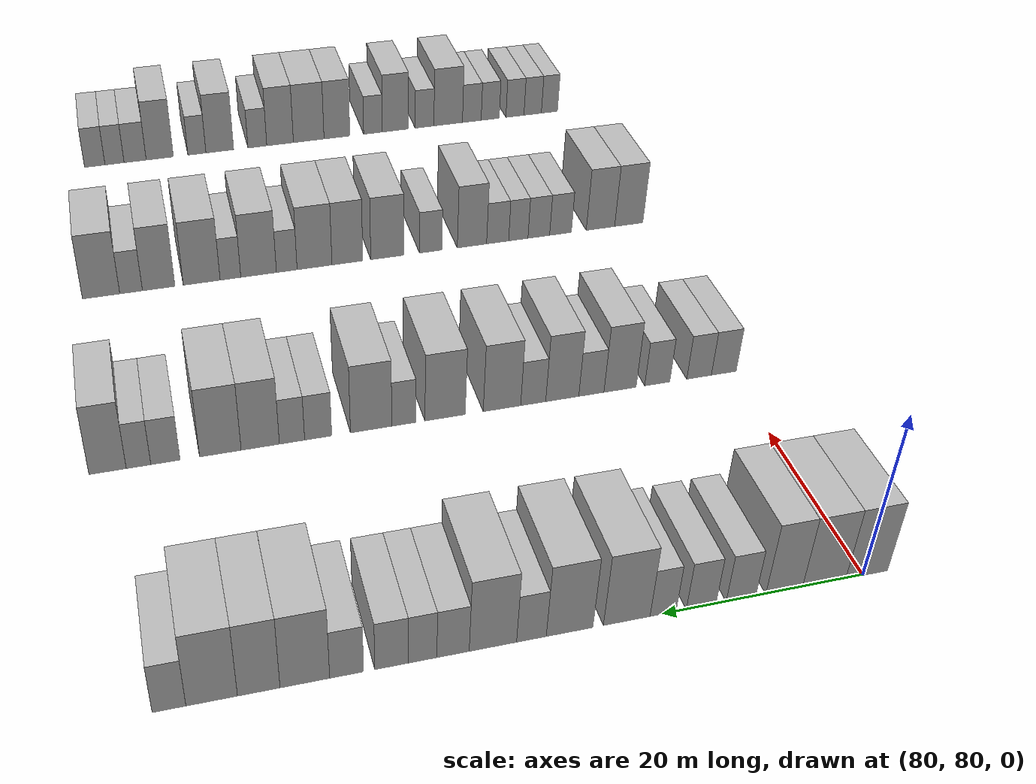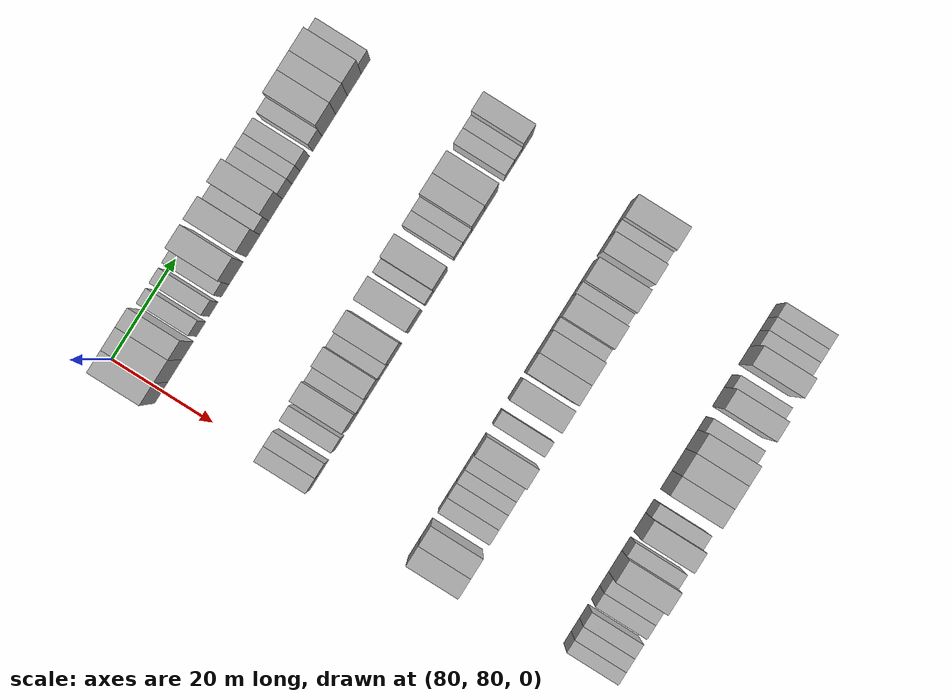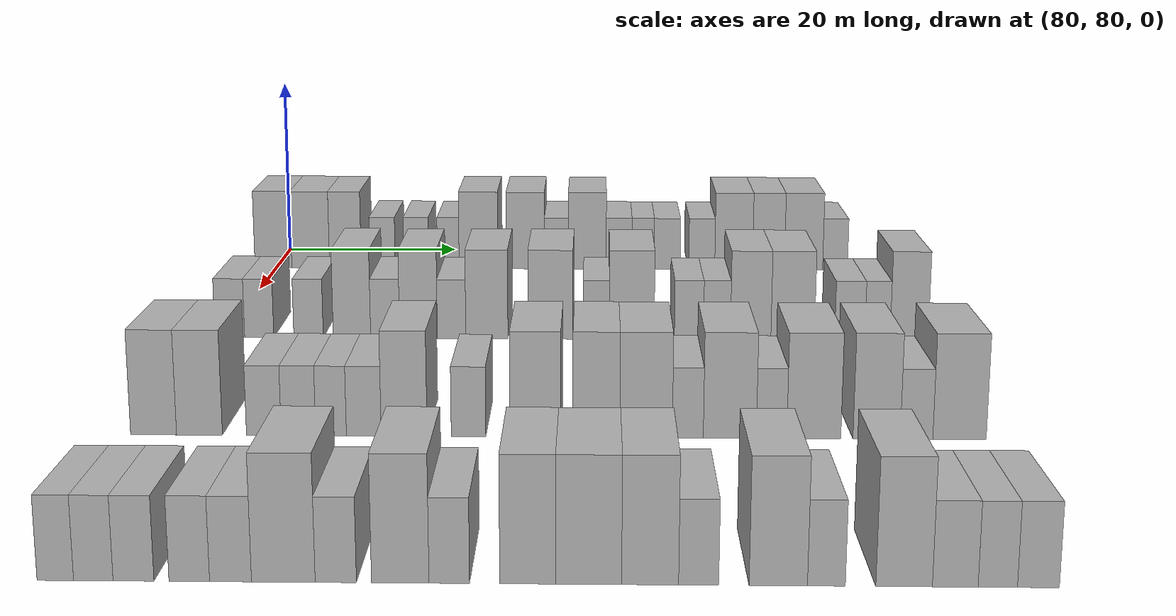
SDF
<sdf version="1.6">
 <world name="default">
  <model name="building_597">
   <static>1</static>
   <pose>85.0000 79.6648 0 0.000000 0.000000 0.000000</pose>
   <link name="link">
    <pose>0 0 4.50 0 0 0</pose>
    <collision name="collision"><geometry><box><size>10.0000 4.2686 9.0000</size></box></geometry></collision>
    <visual name="visual">
     <cast_shadows>0</cast_shadows>
     <geometry><box><size>10.0000 4.2686 9.0000</size></box></geometry>
     <material>
      <script>
       <uri>model://HANNAS_wall/materials/scripts</uri>
       <uri>model://HANNAS_wall/materials/textures</uri>
       <name>vrc/HANNAS_wall</name>
      </script>
     </material>
    </visual>
   </link>
  </model>
  <model name="building_598">
   <static>1</static>
   <pose>85.0000 83.9925 0 0.000000 0.000000 0.000000</pose>
   <link name="link">
    <pose>0 0 4.50 0 0 0</pose>
    <collision name="collision"><geometry><box><size>10.0000 4.3868 9.0000</size></box></geometry></collision>
    <visual name="visual">
     <cast_shadows>0</cast_shadows>
     <geometry><box><size>10.0000 4.3868 9.0000</size></box></geometry>
     <material>
      <script>
       <uri>model://HANNAS_wall/materials/scripts</uri>
       <uri>model://HANNAS_wall/materials/textures</uri>
       <name>vrc/HANNAS_wall</name>
      </script>
     </material>
    </visual>
   </link>
  </model>
  <model name="building_599">
   <static>1</static>
   <pose>85.0000 88.0262 0 0.000000 0.000000 0.000000</pose>
   <link name="link">
    <pose>0 0 4.50 0 0 0</pose>
    <collision name="collision"><geometry><box><size>10.0000 3.6805 9.0000</size></box></geometry></collision>
    <visual name="visual">
     <cast_shadows>0</cast_shadows>
     <geometry><box><size>10.0000 3.6805 9.0000</size></box></geometry>
     <material>
      <script>
       <uri>model://HANNAS_wall/materials/scripts</uri>
       <uri>model://HANNAS_wall/materials/textures</uri>
       <name>vrc/HANNAS_wall</name>
      </script>
     </material>
    </visual>
   </link>
  </model>
  <model name="building_600">
   <static>1</static>
   <pose>85.0000 92.3312 0 0.000000 0.000000 0.000000</pose>
   <link name="link">
    <pose>0 0 3.00 0 0 0</pose>
    <collision name="collision"><geometry><box><size>10.0000 2.9296 6.0000</size></box></geometry></collision>
    <visual name="visual">
     <cast_shadows>0</cast_shadows>
     <geometry><box><size>10.0000 2.9296 6.0000</size></box></geometry>
     <material>
      <script>
       <uri>model://HANNAS_wall/materials/scripts</uri>
       <uri>model://HANNAS_wall/materials/textures</uri>
       <name>vrc/HANNAS_wall</name>
      </script>
     </material>
    </visual>
   </link>
  </model>
  <model name="building_601">
   <static>1</static>
   <pose>85.0000 96.2446 0 0.000000 0.000000 0.000000</pose>
   <link name="link">
    <pose>0 0 3.00 0 0 0</pose>
    <collision name="collision"><geometry><box><size>10.0000 2.8971 6.0000</size></box></geometry></collision>
    <visual name="visual">
     <cast_shadows>0</cast_shadows>
     <geometry><box><size>10.0000 2.8971 6.0000</size></box></geometry>
     <material>
      <script>
       <uri>model://HANNAS_wall/materials/scripts</uri>
       <uri>model://HANNAS_wall/materials/textures</uri>
       <name>vrc/HANNAS_wall</name>
      </script>
     </material>
    </visual>
   </link>
  </model>
  <model name="building_602">
   <static>1</static>
   <pose>85.0000 99.9467 0 0.000000 0.000000 0.000000</pose>
   <link name="link">
    <pose>0 0 3.00 0 0 0</pose>
    <collision name="collision"><geometry><box><size>10.0000 2.5072 6.0000</size></box></geometry></collision>
    <visual name="visual">
     <cast_shadows>0</cast_shadows>
     <geometry><box><size>10.0000 2.5072 6.0000</size></box></geometry>
     <material>
      <script>
       <uri>model://HANNAS_wall/materials/scripts</uri>
       <uri>model://HANNAS_wall/materials/textures</uri>
       <name>vrc/HANNAS_wall</name>
      </script>
     </material>
    </visual>
   </link>
  </model>
  <model name="building_603">
   <static>1</static>
   <pose>85.0000 103.4349 0 0.000000 0.000000 0.000000</pose>
   <link name="link">
    <pose>0 0 4.50 0 0 0</pose>
    <collision name="collision"><geometry><box><size>10.0000 4.4692 9.0000</size></box></geometry></collision>
    <visual name="visual">
     <cast_shadows>0</cast_shadows>
     <geometry><box><size>10.0000 4.4692 9.0000</size></box></geometry>
     <material>
      <script>
       <uri>model://HANNAS_wall/materials/scripts</uri>
       <uri>model://HANNAS_wall/materials/textures</uri>
       <name>vrc/HANNAS_wall</name>
      </script>
     </material>
    </visual>
   </link>
  </model>
  <model name="building_604">
   <static>1</static>
   <pose>85.0000 108.8616 0 0.000000 0.000000 0.000000</pose>
   <link name="link">
    <pose>0 0 4.50 0 0 0</pose>
    <collision name="collision"><geometry><box><size>10.0000 4.3843 9.0000</size></box></geometry></collision>
    <visual name="visual">
     <cast_shadows>0</cast_shadows>
     <geometry><box><size>10.0000 4.3843 9.0000</size></box></geometry>
     <material>
      <script>
       <uri>model://HANNAS_wall/materials/scripts</uri>
       <uri>model://HANNAS_wall/materials/textures</uri>
       <name>vrc/HANNAS_wall</name>
      </script>
     </material>
    </visual>
   </link>
  </model>
  <model name="building_605">
   <static>1</static>
   <pose>85.0000 112.4361 0 0.000000 0.000000 0.000000</pose>
   <link name="link">
    <pose>0 0 3.00 0 0 0</pose>
    <collision name="collision"><geometry><box><size>10.0000 2.7646 6.0000</size></box></geometry></collision>
    <visual name="visual">
     <cast_shadows>0</cast_shadows>
     <geometry><box><size>10.0000 2.7646 6.0000</size></box></geometry>
     <material>
      <script>
       <uri>model://HANNAS_wall/materials/scripts</uri>
       <uri>model://HANNAS_wall/materials/textures</uri>
       <name>vrc/HANNAS_wall</name>
      </script>
     </material>
    </visual>
   </link>
  </model>
  <model name="building_606">
   <static>1</static>
   <pose>85.0000 116.0012 0 0.000000 0.000000 0.000000</pose>
   <link name="link">
    <pose>0 0 4.50 0 0 0</pose>
    <collision name="collision"><geometry><box><size>10.0000 4.3656 9.0000</size></box></geometry></collision>
    <visual name="visual">
     <cast_shadows>0</cast_shadows>
     <geometry><box><size>10.0000 4.3656 9.0000</size></box></geometry>
     <material>
      <script>
       <uri>model://HANNAS_wall/materials/scripts</uri>
       <uri>model://HANNAS_wall/materials/textures</uri>
       <name>vrc/HANNAS_wall</name>
      </script>
     </material>
    </visual>
   </link>
  </model>
  <model name="building_607">
   <static>1</static>
   <pose>85.0000 119.6629 0 0.000000 0.000000 0.000000</pose>
   <link name="link">
    <pose>0 0 3.00 0 0 0</pose>
    <collision name="collision"><geometry><box><size>10.0000 2.9578 6.0000</size></box></geometry></collision>
    <visual name="visual">
     <cast_shadows>0</cast_shadows>
     <geometry><box><size>10.0000 2.9578 6.0000</size></box></geometry>
     <material>
      <script>
       <uri>model://HANNAS_wall/materials/scripts</uri>
       <uri>model://HANNAS_wall/materials/textures</uri>
       <name>vrc/HANNAS_wall</name>
      </script>
     </material>
    </visual>
   </link>
  </model>
  <model name="building_608">
   <static>1</static>
   <pose>85.0000 122.4268 0 0.000000 0.000000 0.000000</pose>
   <link name="link">
    <pose>0 0 3.00 0 0 0</pose>
    <collision name="collision"><geometry><box><size>10.0000 2.5700 6.0000</size></box></geometry></collision>
    <visual name="visual">
     <cast_shadows>0</cast_shadows>
     <geometry><box><size>10.0000 2.5700 6.0000</size></box></geometry>
     <material>
      <script>
       <uri>model://HANNAS_wall/materials/scripts</uri>
       <uri>model://HANNAS_wall/materials/textures</uri>
       <name>vrc/HANNAS_wall</name>
      </script>
     </material>
    </visual>
   </link>
  </model>
  <model name="building_609">
   <static>1</static>
   <pose>85.0000 125.2108 0 0.000000 0.000000 0.000000</pose>
   <link name="link">
    <pose>0 0 3.00 0 0 0</pose>
    <collision name="collision"><geometry><box><size>10.0000 2.9979 6.0000</size></box></geometry></collision>
    <visual name="visual">
     <cast_shadows>0</cast_shadows>
     <geometry><box><size>10.0000 2.9979 6.0000</size></box></geometry>
     <material>
      <script>
       <uri>model://HANNAS_wall/materials/scripts</uri>
       <uri>model://HANNAS_wall/materials/textures</uri>
       <name>vrc/HANNAS_wall</name>
      </script>
     </material>
    </visual>
   </link>
  </model>
  <model name="building_610">
   <static>1</static>
   <pose>85.0000 129.2045 0 0.000000 0.000000 0.000000</pose>
   <link name="link">
    <pose>0 0 3.00 0 0 0</pose>
    <collision name="collision"><geometry><box><size>10.0000 2.9896 6.0000</size></box></geometry></collision>
    <visual name="visual">
     <cast_shadows>0</cast_shadows>
     <geometry><box><size>10.0000 2.9896 6.0000</size></box></geometry>
     <material>
      <script>
       <uri>model://HANNAS_wall/materials/scripts</uri>
       <uri>model://HANNAS_wall/materials/textures</uri>
       <name>vrc/HANNAS_wall</name>
      </script>
     </material>
    </visual>
   </link>
  </model>
  <model name="building_611">
   <static>1</static>
   <pose>85.0000 132.8701 0 0.000000 0.000000 0.000000</pose>
   <link name="link">
    <pose>0 0 4.50 0 0 0</pose>
    <collision name="collision"><geometry><box><size>10.0000 4.3416 9.0000</size></box></geometry></collision>
    <visual name="visual">
     <cast_shadows>0</cast_shadows>
     <geometry><box><size>10.0000 4.3416 9.0000</size></box></geometry>
     <material>
      <script>
       <uri>model://HANNAS_wall/materials/scripts</uri>
       <uri>model://HANNAS_wall/materials/textures</uri>
       <name>vrc/HANNAS_wall</name>
      </script>
     </material>
    </visual>
   </link>
  </model>
  <model name="building_612">
   <static>1</static>
   <pose>85.0000 136.8773 0 0.000000 0.000000 0.000000</pose>
   <link name="link">
    <pose>0 0 4.50 0 0 0</pose>
    <collision name="collision"><geometry><box><size>10.0000 3.6727 9.0000</size></box></geometry></collision>
    <visual name="visual">
     <cast_shadows>0</cast_shadows>
     <geometry><box><size>10.0000 3.6727 9.0000</size></box></geometry>
     <material>
      <script>
       <uri>model://HANNAS_wall/materials/scripts</uri>
       <uri>model://HANNAS_wall/materials/textures</uri>
       <name>vrc/HANNAS_wall</name>
      </script>
     </material>
    </visual>
   </link>
  </model>
  <model name="building_613">
   <static>1</static>
   <pose>85.0000 140.9123 0 0.000000 0.000000 0.000000</pose>
   <link name="link">
    <pose>0 0 4.50 0 0 0</pose>
    <collision name="collision"><geometry><box><size>10.0000 4.3973 9.0000</size></box></geometry></collision>
    <visual name="visual">
     <cast_shadows>0</cast_shadows>
     <geometry><box><size>10.0000 4.3973 9.0000</size></box></geometry>
     <material>
      <script>
       <uri>model://HANNAS_wall/materials/scripts</uri>
       <uri>model://HANNAS_wall/materials/textures</uri>
       <name>vrc/HANNAS_wall</name>
      </script>
     </material>
    </visual>
   </link>
  </model>
  <model name="building_614">
   <static>1</static>
   <pose>85.0000 144.5351 0 0.000000 0.000000 0.000000</pose>
   <link name="link">
    <pose>0 0 3.00 0 0 0</pose>
    <collision name="collision"><geometry><box><size>10.0000 2.8482 6.0000</size></box></geometry></collision>
    <visual name="visual">
     <cast_shadows>0</cast_shadows>
     <geometry><box><size>10.0000 2.8482 6.0000</size></box></geometry>
     <material>
      <script>
       <uri>model://HANNAS_wall/materials/scripts</uri>
       <uri>model://HANNAS_wall/materials/textures</uri>
       <name>vrc/HANNAS_wall</name>
      </script>
     </material>
    </visual>
   </link>
  </model>
  <model name="building_819">
   <static>1</static>
   <pose>115.0000 80.6737 0 0.000000 0.000000 0.000000</pose>
   <link name="link">
    <pose>0 0 3.00 0 0 0</pose>
    <collision name="collision"><geometry><box><size>10.0000 2.9495 6.0000</size></box></geometry></collision>
    <visual name="visual">
     <cast_shadows>0</cast_shadows>
     <geometry><box><size>10.0000 2.9495 6.0000</size></box></geometry>
     <material>
      <script>
       <uri>model://HANNAS_wall/materials/scripts</uri>
       <uri>model://HANNAS_wall/materials/textures</uri>
       <name>vrc/HANNAS_wall</name>
      </script>
     </material>
    </visual>
   </link>
  </model>
  <model name="building_820">
   <static>1</static>
   <pose>115.0000 83.5991 0 0.000000 0.000000 0.000000</pose>
   <link name="link">
    <pose>0 0 3.00 0 0 0</pose>
    <collision name="collision"><geometry><box><size>10.0000 2.9014 6.0000</size></box></geometry></collision>
    <visual name="visual">
     <cast_shadows>0</cast_shadows>
     <geometry><box><size>10.0000 2.9014 6.0000</size></box></geometry>
     <material>
      <script>
       <uri>model://HANNAS_wall/materials/scripts</uri>
       <uri>model://HANNAS_wall/materials/textures</uri>
       <name>vrc/HANNAS_wall</name>
      </script>
     </material>
    </visual>
   </link>
  </model>
  <model name="building_821">
   <static>1</static>
   <pose>115.0000 88.5119 0 0.000000 0.000000 0.000000</pose>
   <link name="link">
    <pose>0 0 3.00 0 0 0</pose>
    <collision name="collision"><geometry><box><size>10.0000 2.9243 6.0000</size></box></geometry></collision>
    <visual name="visual">
     <cast_shadows>0</cast_shadows>
     <geometry><box><size>10.0000 2.9243 6.0000</size></box></geometry>
     <material>
      <script>
       <uri>model://HANNAS_wall/materials/scripts</uri>
       <uri>model://HANNAS_wall/materials/textures</uri>
       <name>vrc/HANNAS_wall</name>
      </script>
     </material>
    </visual>
   </link>
  </model>
  <model name="building_822">
   <static>1</static>
   <pose>115.0000 92.8303 0 0.000000 0.000000 0.000000</pose>
   <link name="link">
    <pose>0 0 4.50 0 0 0</pose>
    <collision name="collision"><geometry><box><size>10.0000 3.7126 9.0000</size></box></geometry></collision>
    <visual name="visual">
     <cast_shadows>0</cast_shadows>
     <geometry><box><size>10.0000 3.7126 9.0000</size></box></geometry>
     <material>
      <script>
       <uri>model://HANNAS_wall/materials/scripts</uri>
       <uri>model://HANNAS_wall/materials/textures</uri>
       <name>vrc/HANNAS_wall</name>
      </script>
     </material>
    </visual>
   </link>
  </model>
  <model name="building_823">
   <static>1</static>
   <pose>115.0000 96.1258 0 0.000000 0.000000 0.000000</pose>
   <link name="link">
    <pose>0 0 3.00 0 0 0</pose>
    <collision name="collision"><geometry><box><size>10.0000 2.8783 6.0000</size></box></geometry></collision>
    <visual name="visual">
     <cast_shadows>0</cast_shadows>
     <geometry><box><size>10.0000 2.8783 6.0000</size></box></geometry>
     <material>
      <script>
       <uri>model://HANNAS_wall/materials/scripts</uri>
       <uri>model://HANNAS_wall/materials/textures</uri>
       <name>vrc/HANNAS_wall</name>
      </script>
     </material>
    </visual>
   </link>
  </model>
  <model name="building_824">
   <static>1</static>
   <pose>115.0000 99.4421 0 0.000000 0.000000 0.000000</pose>
   <link name="link">
    <pose>0 0 4.50 0 0 0</pose>
    <collision name="collision"><geometry><box><size>10.0000 3.7544 9.0000</size></box></geometry></collision>
    <visual name="visual">
     <cast_shadows>0</cast_shadows>
     <geometry><box><size>10.0000 3.7544 9.0000</size></box></geometry>
     <material>
      <script>
       <uri>model://HANNAS_wall/materials/scripts</uri>
       <uri>model://HANNAS_wall/materials/textures</uri>
       <name>vrc/HANNAS_wall</name>
      </script>
     </material>
    </visual>
   </link>
  </model>
  <model name="building_825">
   <static>1</static>
   <pose>115.0000 102.7290 0 0.000000 0.000000 0.000000</pose>
   <link name="link">
    <pose>0 0 3.00 0 0 0</pose>
    <collision name="collision"><geometry><box><size>10.0000 2.8195 6.0000</size></box></geometry></collision>
    <visual name="visual">
     <cast_shadows>0</cast_shadows>
     <geometry><box><size>10.0000 2.8195 6.0000</size></box></geometry>
     <material>
      <script>
       <uri>model://HANNAS_wall/materials/scripts</uri>
       <uri>model://HANNAS_wall/materials/textures</uri>
       <name>vrc/HANNAS_wall</name>
      </script>
     </material>
    </visual>
   </link>
  </model>
  <model name="building_826">
   <static>1</static>
   <pose>115.0000 106.2276 0 0.000000 0.000000 0.000000</pose>
   <link name="link">
    <pose>0 0 4.50 0 0 0</pose>
    <collision name="collision"><geometry><box><size>10.0000 4.1777 9.0000</size></box></geometry></collision>
    <visual name="visual">
     <cast_shadows>0</cast_shadows>
     <geometry><box><size>10.0000 4.1777 9.0000</size></box></geometry>
     <material>
      <script>
       <uri>model://HANNAS_wall/materials/scripts</uri>
       <uri>model://HANNAS_wall/materials/textures</uri>
       <name>vrc/HANNAS_wall</name>
      </script>
     </material>
    </visual>
   </link>
  </model>
  <model name="building_827">
   <static>1</static>
   <pose>115.0000 112.5323 0 0.000000 0.000000 0.000000</pose>
   <link name="link">
    <pose>0 0 4.50 0 0 0</pose>
    <collision name="collision"><geometry><box><size>10.0000 4.4315 9.0000</size></box></geometry></collision>
    <visual name="visual">
     <cast_shadows>0</cast_shadows>
     <geometry><box><size>10.0000 4.4315 9.0000</size></box></geometry>
     <material>
      <script>
       <uri>model://HANNAS_wall/materials/scripts</uri>
       <uri>model://HANNAS_wall/materials/textures</uri>
       <name>vrc/HANNAS_wall</name>
      </script>
     </material>
    </visual>
   </link>
  </model>
  <model name="building_828">
   <static>1</static>
   <pose>115.0000 117.0527 0 0.000000 0.000000 0.000000</pose>
   <link name="link">
    <pose>0 0 3.00 0 0 0</pose>
    <collision name="collision"><geometry><box><size>10.0000 2.6095 6.0000</size></box></geometry></collision>
    <visual name="visual">
     <cast_shadows>0</cast_shadows>
     <geometry><box><size>10.0000 2.6095 6.0000</size></box></geometry>
     <material>
      <script>
       <uri>model://HANNAS_wall/materials/scripts</uri>
       <uri>model://HANNAS_wall/materials/textures</uri>
       <name>vrc/HANNAS_wall</name>
      </script>
     </material>
    </visual>
   </link>
  </model>
  <model name="building_829">
   <static>1</static>
   <pose>115.0000 120.5730 0 0.000000 0.000000 0.000000</pose>
   <link name="link">
    <pose>0 0 4.50 0 0 0</pose>
    <collision name="collision"><geometry><box><size>10.0000 4.4310 9.0000</size></box></geometry></collision>
    <visual name="visual">
     <cast_shadows>0</cast_shadows>
     <geometry><box><size>10.0000 4.4310 9.0000</size></box></geometry>
     <material>
      <script>
       <uri>model://HANNAS_wall/materials/scripts</uri>
       <uri>model://HANNAS_wall/materials/textures</uri>
       <name>vrc/HANNAS_wall</name>
      </script>
     </material>
    </visual>
   </link>
  </model>
  <model name="building_830">
   <static>1</static>
   <pose>115.0000 126.2222 0 0.000000 0.000000 0.000000</pose>
   <link name="link">
    <pose>0 0 3.00 0 0 0</pose>
    <collision name="collision"><geometry><box><size>10.0000 2.8673 6.0000</size></box></geometry></collision>
    <visual name="visual">
     <cast_shadows>0</cast_shadows>
     <geometry><box><size>10.0000 2.8673 6.0000</size></box></geometry>
     <material>
      <script>
       <uri>model://HANNAS_wall/materials/scripts</uri>
       <uri>model://HANNAS_wall/materials/textures</uri>
       <name>vrc/HANNAS_wall</name>
      </script>
     </material>
    </visual>
   </link>
  </model>
  <model name="building_831">
   <static>1</static>
   <pose>115.0000 128.9854 0 0.000000 0.000000 0.000000</pose>
   <link name="link">
    <pose>0 0 3.00 0 0 0</pose>
    <collision name="collision"><geometry><box><size>10.0000 2.6590 6.0000</size></box></geometry></collision>
    <visual name="visual">
     <cast_shadows>0</cast_shadows>
     <geometry><box><size>10.0000 2.6590 6.0000</size></box></geometry>
     <material>
      <script>
       <uri>model://HANNAS_wall/materials/scripts</uri>
       <uri>model://HANNAS_wall/materials/textures</uri>
       <name>vrc/HANNAS_wall</name>
      </script>
     </material>
    </visual>
   </link>
  </model>
  <model name="building_832">
   <static>1</static>
   <pose>115.0000 132.3118 0 0.000000 0.000000 0.000000</pose>
   <link name="link">
    <pose>0 0 4.50 0 0 0</pose>
    <collision name="collision"><geometry><box><size>10.0000 3.9938 9.0000</size></box></geometry></collision>
    <visual name="visual">
     <cast_shadows>0</cast_shadows>
     <geometry><box><size>10.0000 3.9938 9.0000</size></box></geometry>
     <material>
      <script>
       <uri>model://HANNAS_wall/materials/scripts</uri>
       <uri>model://HANNAS_wall/materials/textures</uri>
       <name>vrc/HANNAS_wall</name>
      </script>
     </material>
    </visual>
   </link>
  </model>
  <model name="building_833">
   <static>1</static>
   <pose>115.0000 136.4542 0 0.000000 0.000000 0.000000</pose>
   <link name="link">
    <pose>0 0 4.50 0 0 0</pose>
    <collision name="collision"><geometry><box><size>10.0000 4.2911 9.0000</size></box></geometry></collision>
    <visual name="visual">
     <cast_shadows>0</cast_shadows>
     <geometry><box><size>10.0000 4.2911 9.0000</size></box></geometry>
     <material>
      <script>
       <uri>model://HANNAS_wall/materials/scripts</uri>
       <uri>model://HANNAS_wall/materials/textures</uri>
       <name>vrc/HANNAS_wall</name>
      </script>
     </material>
    </visual>
   </link>
  </model>
  <model name="building_834">
   <static>1</static>
   <pose>115.0000 142.0853 0 0.000000 0.000000 0.000000</pose>
   <link name="link">
    <pose>0 0 3.00 0 0 0</pose>
    <collision name="collision"><geometry><box><size>10.0000 2.9710 6.0000</size></box></geometry></collision>
    <visual name="visual">
     <cast_shadows>0</cast_shadows>
     <geometry><box><size>10.0000 2.9710 6.0000</size></box></geometry>
     <material>
      <script>
       <uri>model://HANNAS_wall/materials/scripts</uri>
       <uri>model://HANNAS_wall/materials/textures</uri>
       <name>vrc/HANNAS_wall</name>
      </script>
     </material>
    </visual>
   </link>
  </model>
  <model name="building_835">
   <static>1</static>
   <pose>115.0000 144.8119 0 0.000000 0.000000 0.000000</pose>
   <link name="link">
    <pose>0 0 3.00 0 0 0</pose>
    <collision name="collision"><geometry><box><size>10.0000 2.4822 6.0000</size></box></geometry></collision>
    <visual name="visual">
     <cast_shadows>0</cast_shadows>
     <geometry><box><size>10.0000 2.4822 6.0000</size></box></geometry>
     <material>
      <script>
       <uri>model://HANNAS_wall/materials/scripts</uri>
       <uri>model://HANNAS_wall/materials/textures</uri>
       <name>vrc/HANNAS_wall</name>
      </script>
     </material>
    </visual>
   </link>
  </model>
  <model name="building_836">
   <static>1</static>
   <pose>115.0000 147.9235 0 0.000000 0.000000 0.000000</pose>
   <link name="link">
    <pose>0 0 4.50 0 0 0</pose>
    <collision name="collision"><geometry><box><size>10.0000 3.7411 9.0000</size></box></geometry></collision>
    <visual name="visual">
     <cast_shadows>0</cast_shadows>
     <geometry><box><size>10.0000 3.7411 9.0000</size></box></geometry>
     <material>
      <script>
       <uri>model://HANNAS_wall/materials/scripts</uri>
       <uri>model://HANNAS_wall/materials/textures</uri>
       <name>vrc/HANNAS_wall</name>
      </script>
     </material>
    </visual>
   </link>
  </model>
  <model name="building_1049">
   <static>1</static>
   <pose>145.0000 80.3994 0 0.000000 0.000000 0.000000</pose>
   <link name="link">
    <pose>0 0 4.50 0 0 0</pose>
    <collision name="collision"><geometry><box><size>10.0000 3.8233 9.0000</size></box></geometry></collision>
    <visual name="visual">
     <cast_shadows>0</cast_shadows>
     <geometry><box><size>10.0000 3.8233 9.0000</size></box></geometry>
     <material>
      <script>
       <uri>model://HANNAS_wall/materials/scripts</uri>
       <uri>model://HANNAS_wall/materials/textures</uri>
       <name>vrc/HANNAS_wall</name>
      </script>
     </material>
    </visual>
   </link>
  </model>
  <model name="building_1050">
   <static>1</static>
   <pose>145.0000 84.2178 0 0.000000 0.000000 0.000000</pose>
   <link name="link">
    <pose>0 0 4.50 0 0 0</pose>
    <collision name="collision"><geometry><box><size>10.0000 3.8135 9.0000</size></box></geometry></collision>
    <visual name="visual">
     <cast_shadows>0</cast_shadows>
     <geometry><box><size>10.0000 3.8135 9.0000</size></box></geometry>
     <material>
      <script>
       <uri>model://HANNAS_wall/materials/scripts</uri>
       <uri>model://HANNAS_wall/materials/textures</uri>
       <name>vrc/HANNAS_wall</name>
      </script>
     </material>
    </visual>
   </link>
  </model>
  <model name="building_1051">
   <static>1</static>
   <pose>145.0000 89.5683 0 0.000000 0.000000 0.000000</pose>
   <link name="link">
    <pose>0 0 3.00 0 0 0</pose>
    <collision name="collision"><geometry><box><size>10.0000 2.8876 6.0000</size></box></geometry></collision>
    <visual name="visual">
     <cast_shadows>0</cast_shadows>
     <geometry><box><size>10.0000 2.8876 6.0000</size></box></geometry>
     <material>
      <script>
       <uri>model://HANNAS_wall/materials/scripts</uri>
       <uri>model://HANNAS_wall/materials/textures</uri>
       <name>vrc/HANNAS_wall</name>
      </script>
     </material>
    </visual>
   </link>
  </model>
  <model name="building_1052">
   <static>1</static>
   <pose>145.0000 92.4436 0 0.000000 0.000000 0.000000</pose>
   <link name="link">
    <pose>0 0 3.00 0 0 0</pose>
    <collision name="collision"><geometry><box><size>10.0000 2.8631 6.0000</size></box></geometry></collision>
    <visual name="visual">
     <cast_shadows>0</cast_shadows>
     <geometry><box><size>10.0000 2.8631 6.0000</size></box></geometry>
     <material>
      <script>
       <uri>model://HANNAS_wall/materials/scripts</uri>
       <uri>model://HANNAS_wall/materials/textures</uri>
       <name>vrc/HANNAS_wall</name>
      </script>
     </material>
    </visual>
   </link>
  </model>
  <model name="building_1053">
   <static>1</static>
   <pose>145.0000 95.1462 0 0.000000 0.000000 0.000000</pose>
   <link name="link">
    <pose>0 0 3.00 0 0 0</pose>
    <collision name="collision"><geometry><box><size>10.0000 2.5420 6.0000</size></box></geometry></collision>
    <visual name="visual">
     <cast_shadows>0</cast_shadows>
     <geometry><box><size>10.0000 2.5420 6.0000</size></box></geometry>
     <material>
      <script>
       <uri>model://HANNAS_wall/materials/scripts</uri>
       <uri>model://HANNAS_wall/materials/textures</uri>
       <name>vrc/HANNAS_wall</name>
      </script>
     </material>
    </visual>
   </link>
  </model>
  <model name="building_1054">
   <static>1</static>
   <pose>145.0000 97.8598 0 0.000000 0.000000 0.000000</pose>
   <link name="link">
    <pose>0 0 3.00 0 0 0</pose>
    <collision name="collision"><geometry><box><size>10.0000 2.8852 6.0000</size></box></geometry></collision>
    <visual name="visual">
     <cast_shadows>0</cast_shadows>
     <geometry><box><size>10.0000 2.8852 6.0000</size></box></geometry>
     <material>
      <script>
       <uri>model://HANNAS_wall/materials/scripts</uri>
       <uri>model://HANNAS_wall/materials/textures</uri>
       <name>vrc/HANNAS_wall</name>
      </script>
     </material>
    </visual>
   </link>
  </model>
  <model name="building_1055">
   <static>1</static>
   <pose>145.0000 101.2027 0 0.000000 0.000000 0.000000</pose>
   <link name="link">
    <pose>0 0 4.50 0 0 0</pose>
    <collision name="collision"><geometry><box><size>10.0000 3.8006 9.0000</size></box></geometry></collision>
    <visual name="visual">
     <cast_shadows>0</cast_shadows>
     <geometry><box><size>10.0000 3.8006 9.0000</size></box></geometry>
     <material>
      <script>
       <uri>model://HANNAS_wall/materials/scripts</uri>
       <uri>model://HANNAS_wall/materials/textures</uri>
       <name>vrc/HANNAS_wall</name>
      </script>
     </material>
    </visual>
   </link>
  </model>
  <model name="building_1056">
   <static>1</static>
   <pose>145.0000 106.5328 0 0.000000 0.000000 0.000000</pose>
   <link name="link">
    <pose>0 0 3.00 0 0 0</pose>
    <collision name="collision"><geometry><box><size>10.0000 2.8597 6.0000</size></box></geometry></collision>
    <visual name="visual">
     <cast_shadows>0</cast_shadows>
     <geometry><box><size>10.0000 2.8597 6.0000</size></box></geometry>
     <material>
      <script>
       <uri>model://HANNAS_wall/materials/scripts</uri>
       <uri>model://HANNAS_wall/materials/textures</uri>
       <name>vrc/HANNAS_wall</name>
      </script>
     </material>
    </visual>
   </link>
  </model>
  <model name="building_1057">
   <static>1</static>
   <pose>145.0000 112.0595 0 0.000000 0.000000 0.000000</pose>
   <link name="link">
    <pose>0 0 4.50 0 0 0</pose>
    <collision name="collision"><geometry><box><size>10.0000 4.1937 9.0000</size></box></geometry></collision>
    <visual name="visual">
     <cast_shadows>0</cast_shadows>
     <geometry><box><size>10.0000 4.1937 9.0000</size></box></geometry>
     <material>
      <script>
       <uri>model://HANNAS_wall/materials/scripts</uri>
       <uri>model://HANNAS_wall/materials/textures</uri>
       <name>vrc/HANNAS_wall</name>
      </script>
     </material>
    </visual>
   </link>
  </model>
  <model name="building_1058">
   <static>1</static>
   <pose>145.0000 117.0870 0 0.000000 0.000000 0.000000</pose>
   <link name="link">
    <pose>0 0 4.50 0 0 0</pose>
    <collision name="collision"><geometry><box><size>10.0000 3.8612 9.0000</size></box></geometry></collision>
    <visual name="visual">
     <cast_shadows>0</cast_shadows>
     <geometry><box><size>10.0000 3.8612 9.0000</size></box></geometry>
     <material>
      <script>
       <uri>model://HANNAS_wall/materials/scripts</uri>
       <uri>model://HANNAS_wall/materials/textures</uri>
       <name>vrc/HANNAS_wall</name>
      </script>
     </material>
    </visual>
   </link>
  </model>
  <model name="building_1059">
   <static>1</static>
   <pose>145.0000 121.1862 0 0.000000 0.000000 0.000000</pose>
   <link name="link">
    <pose>0 0 4.50 0 0 0</pose>
    <collision name="collision"><geometry><box><size>10.0000 4.3371 9.0000</size></box></geometry></collision>
    <visual name="visual">
     <cast_shadows>0</cast_shadows>
     <geometry><box><size>10.0000 4.3371 9.0000</size></box></geometry>
     <material>
      <script>
       <uri>model://HANNAS_wall/materials/scripts</uri>
       <uri>model://HANNAS_wall/materials/textures</uri>
       <name>vrc/HANNAS_wall</name>
      </script>
     </material>
    </visual>
   </link>
  </model>
  <model name="building_1060">
   <static>1</static>
   <pose>145.0000 124.6288 0 0.000000 0.000000 0.000000</pose>
   <link name="link">
    <pose>0 0 3.00 0 0 0</pose>
    <collision name="collision"><geometry><box><size>10.0000 2.5481 6.0000</size></box></geometry></collision>
    <visual name="visual">
     <cast_shadows>0</cast_shadows>
     <geometry><box><size>10.0000 2.5481 6.0000</size></box></geometry>
     <material>
      <script>
       <uri>model://HANNAS_wall/materials/scripts</uri>
       <uri>model://HANNAS_wall/materials/textures</uri>
       <name>vrc/HANNAS_wall</name>
      </script>
     </material>
    </visual>
   </link>
  </model>
  <model name="building_1061">
   <static>1</static>
   <pose>145.0000 128.0818 0 0.000000 0.000000 0.000000</pose>
   <link name="link">
    <pose>0 0 4.50 0 0 0</pose>
    <collision name="collision"><geometry><box><size>10.0000 4.3578 9.0000</size></box></geometry></collision>
    <visual name="visual">
     <cast_shadows>0</cast_shadows>
     <geometry><box><size>10.0000 4.3578 9.0000</size></box></geometry>
     <material>
      <script>
       <uri>model://HANNAS_wall/materials/scripts</uri>
       <uri>model://HANNAS_wall/materials/textures</uri>
       <name>vrc/HANNAS_wall</name>
      </script>
     </material>
    </visual>
   </link>
  </model>
  <model name="building_1062">
   <static>1</static>
   <pose>145.0000 131.5144 0 0.000000 0.000000 0.000000</pose>
   <link name="link">
    <pose>0 0 3.00 0 0 0</pose>
    <collision name="collision"><geometry><box><size>10.0000 2.5074 6.0000</size></box></geometry></collision>
    <visual name="visual">
     <cast_shadows>0</cast_shadows>
     <geometry><box><size>10.0000 2.5074 6.0000</size></box></geometry>
     <material>
      <script>
       <uri>model://HANNAS_wall/materials/scripts</uri>
       <uri>model://HANNAS_wall/materials/textures</uri>
       <name>vrc/HANNAS_wall</name>
      </script>
     </material>
    </visual>
   </link>
  </model>
  <model name="building_1063">
   <static>1</static>
   <pose>145.0000 134.9887 0 0.000000 0.000000 0.000000</pose>
   <link name="link">
    <pose>0 0 4.50 0 0 0</pose>
    <collision name="collision"><geometry><box><size>10.0000 4.4412 9.0000</size></box></geometry></collision>
    <visual name="visual">
     <cast_shadows>0</cast_shadows>
     <geometry><box><size>10.0000 4.4412 9.0000</size></box></geometry>
     <material>
      <script>
       <uri>model://HANNAS_wall/materials/scripts</uri>
       <uri>model://HANNAS_wall/materials/textures</uri>
       <name>vrc/HANNAS_wall</name>
      </script>
     </material>
    </visual>
   </link>
  </model>
  <model name="building_1064">
   <static>1</static>
   <pose>145.0000 140.1446 0 0.000000 0.000000 0.000000</pose>
   <link name="link">
    <pose>0 0 4.50 0 0 0</pose>
    <collision name="collision"><geometry><box><size>10.0000 3.8706 9.0000</size></box></geometry></collision>
    <visual name="visual">
     <cast_shadows>0</cast_shadows>
     <geometry><box><size>10.0000 3.8706 9.0000</size></box></geometry>
     <material>
      <script>
       <uri>model://HANNAS_wall/materials/scripts</uri>
       <uri>model://HANNAS_wall/materials/textures</uri>
       <name>vrc/HANNAS_wall</name>
      </script>
     </material>
    </visual>
   </link>
  </model>
  <model name="building_1065">
   <static>1</static>
   <pose>145.0000 143.4181 0 0.000000 0.000000 0.000000</pose>
   <link name="link">
    <pose>0 0 3.00 0 0 0</pose>
    <collision name="collision"><geometry><box><size>10.0000 2.6765 6.0000</size></box></geometry></collision>
    <visual name="visual">
     <cast_shadows>0</cast_shadows>
     <geometry><box><size>10.0000 2.6765 6.0000</size></box></geometry>
     <material>
      <script>
       <uri>model://HANNAS_wall/materials/scripts</uri>
       <uri>model://HANNAS_wall/materials/textures</uri>
       <name>vrc/HANNAS_wall</name>
      </script>
     </material>
    </visual>
   </link>
  </model>
  <model name="building_1066">
   <static>1</static>
   <pose>145.0000 146.9461 0 0.000000 0.000000 0.000000</pose>
   <link name="link">
    <pose>0 0 4.50 0 0 0</pose>
    <collision name="collision"><geometry><box><size>10.0000 4.3795 9.0000</size></box></geometry></collision>
    <visual name="visual">
     <cast_shadows>0</cast_shadows>
     <geometry><box><size>10.0000 4.3795 9.0000</size></box></geometry>
     <material>
      <script>
       <uri>model://HANNAS_wall/materials/scripts</uri>
       <uri>model://HANNAS_wall/materials/textures</uri>
       <name>vrc/HANNAS_wall</name>
      </script>
     </material>
    </visual>
   </link>
  </model>
  <model name="building_1284">
   <static>1</static>
   <pose>175.0000 81.1846 0 0.000000 0.000000 0.000000</pose>
   <link name="link">
    <pose>0 0 3.00 0 0 0</pose>
    <collision name="collision"><geometry><box><size>10.0000 2.4378 6.0000</size></box></geometry></collision>
    <visual name="visual">
     <cast_shadows>0</cast_shadows>
     <geometry><box><size>10.0000 2.4378 6.0000</size></box></geometry>
     <material>
      <script>
       <uri>model://HANNAS_wall/materials/scripts</uri>
       <uri>model://HANNAS_wall/materials/textures</uri>
       <name>vrc/HANNAS_wall</name>
      </script>
     </material>
    </visual>
   </link>
  </model>
  <model name="building_1285">
   <static>1</static>
   <pose>175.0000 83.7216 0 0.000000 0.000000 0.000000</pose>
   <link name="link">
    <pose>0 0 3.00 0 0 0</pose>
    <collision name="collision"><geometry><box><size>10.0000 2.6360 6.0000</size></box></geometry></collision>
    <visual name="visual">
     <cast_shadows>0</cast_shadows>
     <geometry><box><size>10.0000 2.6360 6.0000</size></box></geometry>
     <material>
      <script>
       <uri>model://HANNAS_wall/materials/scripts</uri>
       <uri>model://HANNAS_wall/materials/textures</uri>
       <name>vrc/HANNAS_wall</name>
      </script>
     </material>
    </visual>
   </link>
  </model>
  <model name="building_1286">
   <static>1</static>
   <pose>175.0000 86.4019 0 0.000000 0.000000 0.000000</pose>
   <link name="link">
    <pose>0 0 3.00 0 0 0</pose>
    <collision name="collision"><geometry><box><size>10.0000 2.7247 6.0000</size></box></geometry></collision>
    <visual name="visual">
     <cast_shadows>0</cast_shadows>
     <geometry><box><size>10.0000 2.7247 6.0000</size></box></geometry>
     <material>
      <script>
       <uri>model://HANNAS_wall/materials/scripts</uri>
       <uri>model://HANNAS_wall/materials/textures</uri>
       <name>vrc/HANNAS_wall</name>
      </script>
     </material>
    </visual>
   </link>
  </model>
  <model name="building_1287">
   <static>1</static>
   <pose>175.0000 90.1155 0 0.000000 0.000000 0.000000</pose>
   <link name="link">
    <pose>0 0 3.00 0 0 0</pose>
    <collision name="collision"><geometry><box><size>10.0000 2.7025 6.0000</size></box></geometry></collision>
    <visual name="visual">
     <cast_shadows>0</cast_shadows>
     <geometry><box><size>10.0000 2.7025 6.0000</size></box></geometry>
     <material>
      <script>
       <uri>model://HANNAS_wall/materials/scripts</uri>
       <uri>model://HANNAS_wall/materials/textures</uri>
       <name>vrc/HANNAS_wall</name>
      </script>
     </material>
    </visual>
   </link>
  </model>
  <model name="building_1288">
   <static>1</static>
   <pose>175.0000 92.8616 0 0.000000 0.000000 0.000000</pose>
   <link name="link">
    <pose>0 0 3.00 0 0 0</pose>
    <collision name="collision"><geometry><box><size>10.0000 2.7895 6.0000</size></box></geometry></collision>
    <visual name="visual">
     <cast_shadows>0</cast_shadows>
     <geometry><box><size>10.0000 2.7895 6.0000</size></box></geometry>
     <material>
      <script>
       <uri>model://HANNAS_wall/materials/scripts</uri>
       <uri>model://HANNAS_wall/materials/textures</uri>
       <name>vrc/HANNAS_wall</name>
      </script>
     </material>
    </visual>
   </link>
  </model>
  <model name="building_1289">
   <static>1</static>
   <pose>175.0000 96.3724 0 0.000000 0.000000 0.000000</pose>
   <link name="link">
    <pose>0 0 4.50 0 0 0</pose>
    <collision name="collision"><geometry><box><size>10.0000 4.2321 9.0000</size></box></geometry></collision>
    <visual name="visual">
     <cast_shadows>0</cast_shadows>
     <geometry><box><size>10.0000 4.2321 9.0000</size></box></geometry>
     <material>
      <script>
       <uri>model://HANNAS_wall/materials/scripts</uri>
       <uri>model://HANNAS_wall/materials/textures</uri>
       <name>vrc/HANNAS_wall</name>
      </script>
     </material>
    </visual>
   </link>
  </model>
  <model name="building_1290">
   <static>1</static>
   <pose>175.0000 99.8566 0 0.000000 0.000000 0.000000</pose>
   <link name="link">
    <pose>0 0 3.00 0 0 0</pose>
    <collision name="collision"><geometry><box><size>10.0000 2.7363 6.0000</size></box></geometry></collision>
    <visual name="visual">
     <cast_shadows>0</cast_shadows>
     <geometry><box><size>10.0000 2.7363 6.0000</size></box></geometry>
     <material>
      <script>
       <uri>model://HANNAS_wall/materials/scripts</uri>
       <uri>model://HANNAS_wall/materials/textures</uri>
       <name>vrc/HANNAS_wall</name>
      </script>
     </material>
    </visual>
   </link>
  </model>
  <model name="building_1291">
   <static>1</static>
   <pose>175.0000 104.1315 0 0.000000 0.000000 0.000000</pose>
   <link name="link">
    <pose>0 0 4.50 0 0 0</pose>
    <collision name="collision"><geometry><box><size>10.0000 3.8134 9.0000</size></box></geometry></collision>
    <visual name="visual">
     <cast_shadows>0</cast_shadows>
     <geometry><box><size>10.0000 3.8134 9.0000</size></box></geometry>
     <material>
      <script>
       <uri>model://HANNAS_wall/materials/scripts</uri>
       <uri>model://HANNAS_wall/materials/textures</uri>
       <name>vrc/HANNAS_wall</name>
      </script>
     </material>
    </visual>
   </link>
  </model>
  <model name="building_1292">
   <static>1</static>
   <pose>175.0000 107.3803 0 0.000000 0.000000 0.000000</pose>
   <link name="link">
    <pose>0 0 3.00 0 0 0</pose>
    <collision name="collision"><geometry><box><size>10.0000 2.6843 6.0000</size></box></geometry></collision>
    <visual name="visual">
     <cast_shadows>0</cast_shadows>
     <geometry><box><size>10.0000 2.6843 6.0000</size></box></geometry>
     <material>
      <script>
       <uri>model://HANNAS_wall/materials/scripts</uri>
       <uri>model://HANNAS_wall/materials/textures</uri>
       <name>vrc/HANNAS_wall</name>
      </script>
     </material>
    </visual>
   </link>
  </model>
  <model name="building_1293">
   <static>1</static>
   <pose>175.0000 112.5697 0 0.000000 0.000000 0.000000</pose>
   <link name="link">
    <pose>0 0 4.50 0 0 0</pose>
    <collision name="collision"><geometry><box><size>10.0000 3.6945 9.0000</size></box></geometry></collision>
    <visual name="visual">
     <cast_shadows>0</cast_shadows>
     <geometry><box><size>10.0000 3.6945 9.0000</size></box></geometry>
     <material>
      <script>
       <uri>model://HANNAS_wall/materials/scripts</uri>
       <uri>model://HANNAS_wall/materials/textures</uri>
       <name>vrc/HANNAS_wall</name>
      </script>
     </material>
    </visual>
   </link>
  </model>
  <model name="building_1294">
   <static>1</static>
   <pose>175.0000 116.5958 0 0.000000 0.000000 0.000000</pose>
   <link name="link">
    <pose>0 0 4.50 0 0 0</pose>
    <collision name="collision"><geometry><box><size>10.0000 4.3577 9.0000</size></box></geometry></collision>
    <visual name="visual">
     <cast_shadows>0</cast_shadows>
     <geometry><box><size>10.0000 4.3577 9.0000</size></box></geometry>
     <material>
      <script>
       <uri>model://HANNAS_wall/materials/scripts</uri>
       <uri>model://HANNAS_wall/materials/textures</uri>
       <name>vrc/HANNAS_wall</name>
      </script>
     </material>
    </visual>
   </link>
  </model>
  <model name="building_1295">
   <static>1</static>
   <pose>175.0000 120.6543 0 0.000000 0.000000 0.000000</pose>
   <link name="link">
    <pose>0 0 4.50 0 0 0</pose>
    <collision name="collision"><geometry><box><size>10.0000 3.7591 9.0000</size></box></geometry></collision>
    <visual name="visual">
     <cast_shadows>0</cast_shadows>
     <geometry><box><size>10.0000 3.7591 9.0000</size></box></geometry>
     <material>
      <script>
       <uri>model://HANNAS_wall/materials/scripts</uri>
       <uri>model://HANNAS_wall/materials/textures</uri>
       <name>vrc/HANNAS_wall</name>
      </script>
     </material>
    </visual>
   </link>
  </model>
  <model name="building_1296">
   <static>1</static>
   <pose>175.0000 123.8558 0 0.000000 0.000000 0.000000</pose>
   <link name="link">
    <pose>0 0 3.00 0 0 0</pose>
    <collision name="collision"><geometry><box><size>10.0000 2.6439 6.0000</size></box></geometry></collision>
    <visual name="visual">
     <cast_shadows>0</cast_shadows>
     <geometry><box><size>10.0000 2.6439 6.0000</size></box></geometry>
     <material>
      <script>
       <uri>model://HANNAS_wall/materials/scripts</uri>
       <uri>model://HANNAS_wall/materials/textures</uri>
       <name>vrc/HANNAS_wall</name>
      </script>
     </material>
    </visual>
   </link>
  </model>
  <model name="building_1297">
   <static>1</static>
   <pose>175.0000 129.0987 0 0.000000 0.000000 0.000000</pose>
   <link name="link">
    <pose>0 0 4.50 0 0 0</pose>
    <collision name="collision"><geometry><box><size>10.0000 3.8419 9.0000</size></box></geometry></collision>
    <visual name="visual">
     <cast_shadows>0</cast_shadows>
     <geometry><box><size>10.0000 3.8419 9.0000</size></box></geometry>
     <material>
      <script>
       <uri>model://HANNAS_wall/materials/scripts</uri>
       <uri>model://HANNAS_wall/materials/textures</uri>
       <name>vrc/HANNAS_wall</name>
      </script>
     </material>
    </visual>
   </link>
  </model>
  <model name="building_1298">
   <static>1</static>
   <pose>175.0000 132.2649 0 0.000000 0.000000 0.000000</pose>
   <link name="link">
    <pose>0 0 3.00 0 0 0</pose>
    <collision name="collision"><geometry><box><size>10.0000 2.4904 6.0000</size></box></geometry></collision>
    <visual name="visual">
     <cast_shadows>0</cast_shadows>
     <geometry><box><size>10.0000 2.4904 6.0000</size></box></geometry>
     <material>
      <script>
       <uri>model://HANNAS_wall/materials/scripts</uri>
       <uri>model://HANNAS_wall/materials/textures</uri>
       <name>vrc/HANNAS_wall</name>
      </script>
     </material>
    </visual>
   </link>
  </model>
  <model name="building_1299">
   <static>1</static>
   <pose>175.0000 137.3672 0 0.000000 0.000000 0.000000</pose>
   <link name="link">
    <pose>0 0 4.50 0 0 0</pose>
    <collision name="collision"><geometry><box><size>10.0000 3.7142 9.0000</size></box></geometry></collision>
    <visual name="visual">
     <cast_shadows>0</cast_shadows>
     <geometry><box><size>10.0000 3.7142 9.0000</size></box></geometry>
     <material>
      <script>
       <uri>model://HANNAS_wall/materials/scripts</uri>
       <uri>model://HANNAS_wall/materials/textures</uri>
       <name>vrc/HANNAS_wall</name>
      </script>
     </material>
    </visual>
   </link>
  </model>
  <model name="building_1300">
   <static>1</static>
   <pose>175.0000 140.7242 0 0.000000 0.000000 0.000000</pose>
   <link name="link">
    <pose>0 0 3.00 0 0 0</pose>
    <collision name="collision"><geometry><box><size>10.0000 2.9998 6.0000</size></box></geometry></collision>
    <visual name="visual">
     <cast_shadows>0</cast_shadows>
     <geometry><box><size>10.0000 2.9998 6.0000</size></box></geometry>
     <material>
      <script>
       <uri>model://HANNAS_wall/materials/scripts</uri>
       <uri>model://HANNAS_wall/materials/textures</uri>
       <name>vrc/HANNAS_wall</name>
      </script>
     </material>
    </visual>
   </link>
  </model>
  <model name="building_1301">
   <static>1</static>
   <pose>175.0000 143.5139 0 0.000000 0.000000 0.000000</pose>
   <link name="link">
    <pose>0 0 3.00 0 0 0</pose>
    <collision name="collision"><geometry><box><size>10.0000 2.5795 6.0000</size></box></geometry></collision>
    <visual name="visual">
     <cast_shadows>0</cast_shadows>
     <geometry><box><size>10.0000 2.5795 6.0000</size></box></geometry>
     <material>
      <script>
       <uri>model://HANNAS_wall/materials/scripts</uri>
       <uri>model://HANNAS_wall/materials/textures</uri>
       <name>vrc/HANNAS_wall</name>
      </script>
     </material>
    </visual>
   </link>
  </model>
  <model name="building_1302">
   <static>1</static>
   <pose>175.0000 146.1765 0 0.000000 0.000000 0.000000</pose>
   <link name="link">
    <pose>0 0 3.00 0 0 0</pose>
    <collision name="collision"><geometry><box><size>10.0000 2.7456 6.0000</size></box></geometry></collision>
    <visual name="visual">
     <cast_shadows>0</cast_shadows>
     <geometry><box><size>10.0000 2.7456 6.0000</size></box></geometry>
     <material>
      <script>
       <uri>model://HANNAS_wall/materials/scripts</uri>
       <uri>model://HANNAS_wall/materials/textures</uri>
       <name>vrc/HANNAS_wall</name>
      </script>
     </material>
    </visual>
   </link>
  </model>
 </world>
</sdf>
